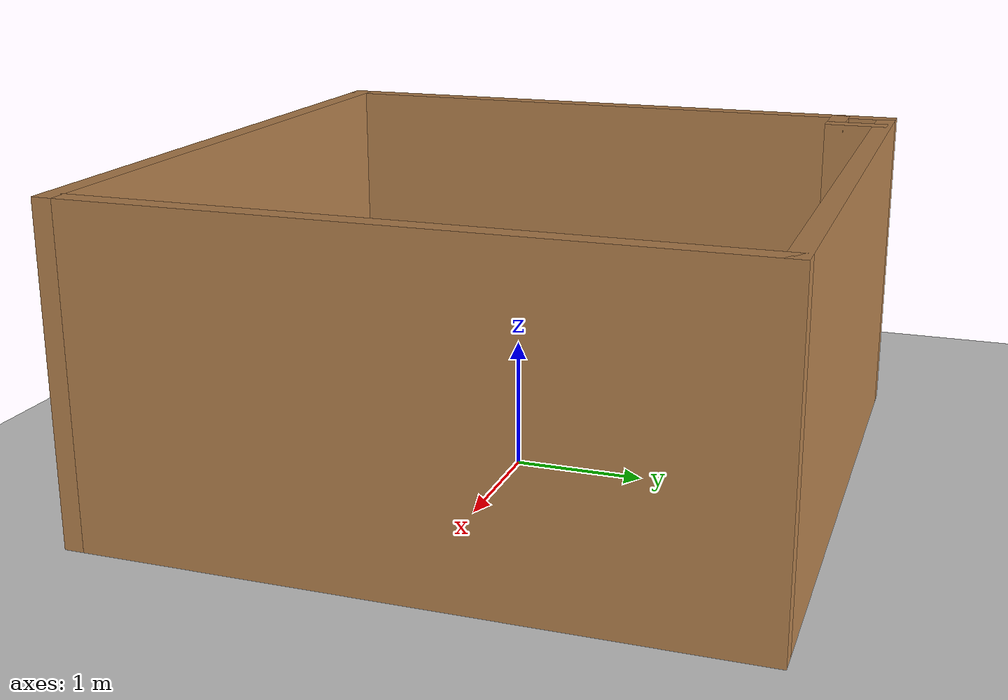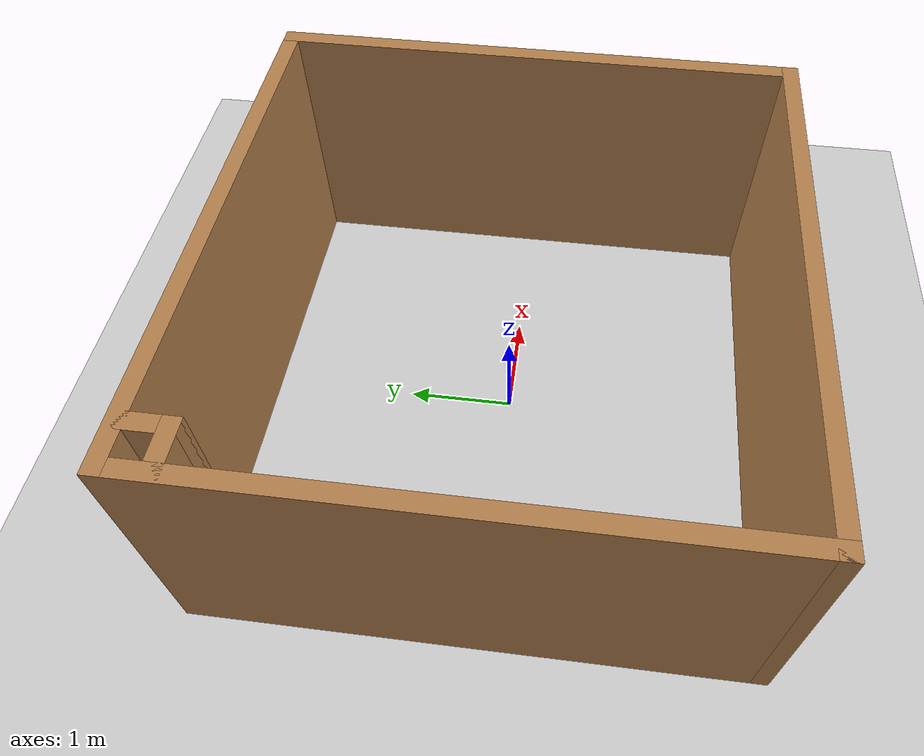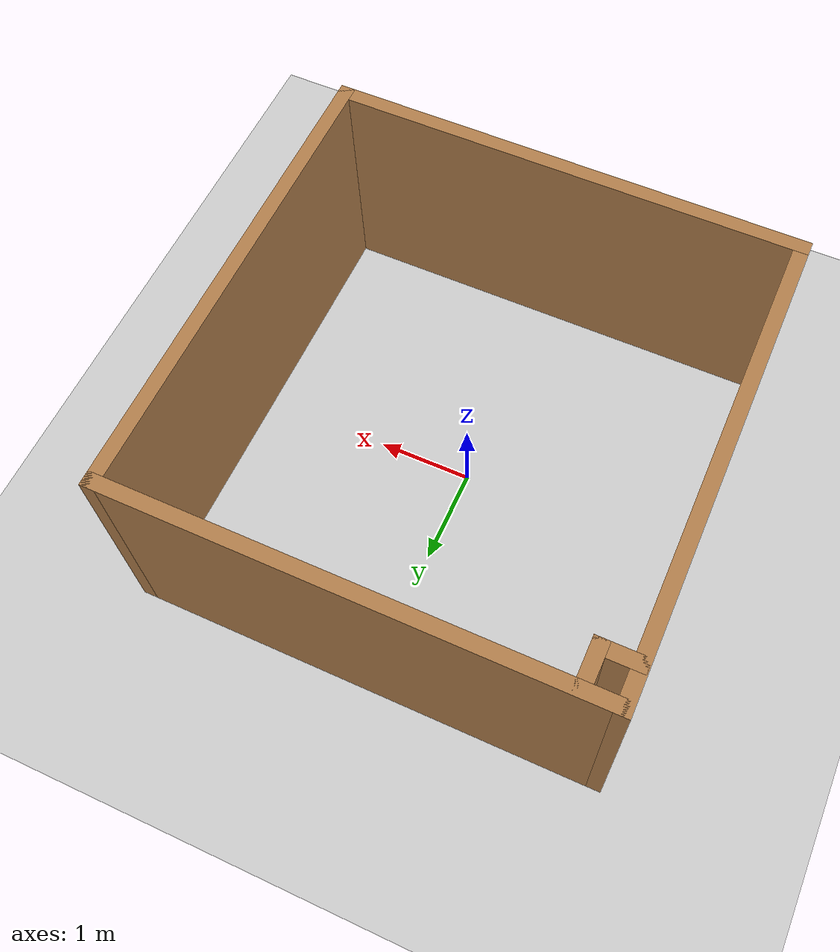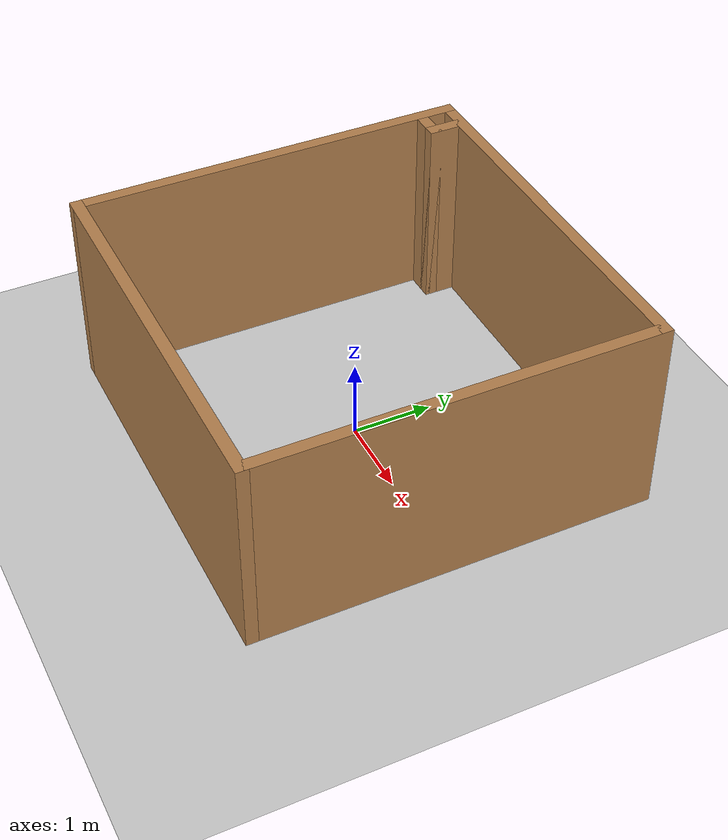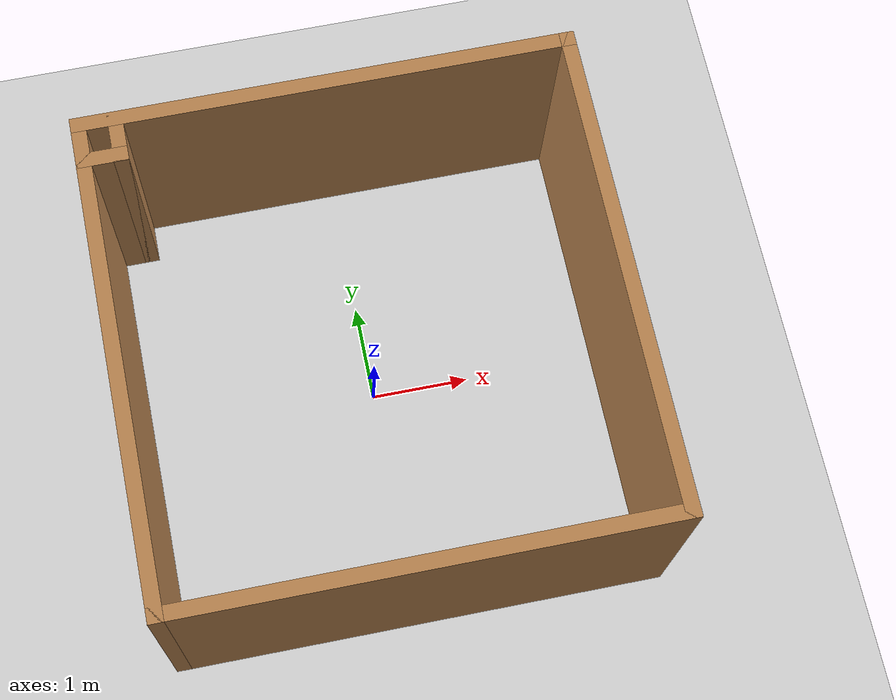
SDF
<sdf version="1.7">
 <world name="default">
  <light name="sun" type="directional">
   <pose>0 0 10 0 -0 0</pose>
   <diffuse>0.8 0.8 0.8 1</diffuse>
   <specular>0.2 0.2 0.2 1</specular>
   <attenuation>
    <range>1000</range>
    <constant>0.9</constant>
    <linear>0.01</linear>
    <quadratic>0.001</quadratic>
   </attenuation>
   <direction>-0.5 0.1 -0.9</direction>
   <spot><inner_angle>0</inner_angle><outer_angle>0</outer_angle><falloff>0</falloff></spot>
  </light>
  <model name="ground_plane">
   <static>1</static>
   <link name="link">
    <collision name="collision">
     <geometry><plane><normal>0 0 1</normal><size>100 100</size></plane></geometry>
     <surface><friction><ode><mu>100</mu><mu2>50</mu2></ode></friction></surface>
    </collision>
    <visual name="visual">
     <cast_shadows>0</cast_shadows>
     <geometry><plane><normal>0 0 1</normal><size>100 100</size></plane></geometry>
     <material>
      <script><uri>file://media/materials/scripts/gazebo.material</uri><name>Gazebo/Grey</name></script>
     </material>
    </visual>
   </link>
  </model>
  <gravity>0 0 -9.8</gravity>
  <magnetic_field>6e-06 2.3e-05 -4.2e-05</magnetic_field>
  <atmosphere type="adiabatic"/>
  <physics type="ode">
   <max_step_size>0.001</max_step_size>
   <real_time_factor>1</real_time_factor>
   <real_time_update_rate>1000</real_time_update_rate>
  </physics>
  <scene><ambient>0.4 0.4 0.4 1</ambient><background>0.7 0.7 0.7 1</background><shadows>1</shadows></scene>
  <audio><device>default</device></audio>
  <spherical_coordinates>
   <surface_model>EARTH_WGS84</surface_model>
   <latitude_deg>0</latitude_deg>
   <longitude_deg>0</longitude_deg>
   <elevation>0</elevation>
   <heading_deg>0</heading_deg>
  </spherical_coordinates>
  <model name="training_env_no_object">
   <pose>0.759671 0.562748 0 0 -0 0</pose>
   <link name="Wall_10">
    <collision name="Wall_10_Collision">
     <geometry><box><size>5 0.15 2.5</size></box></geometry>
     <pose>0 0 1.25 0 -0 0</pose>
    </collision>
    <visual name="Wall_10_Visual">
     <pose>0 0 1.25 0 -0 0</pose>
     <geometry><box><size>5 0.15 2.5</size></box></geometry>
     <material>
      <script><uri>file://media/materials/scripts/gazebo.material</uri><name>Gazebo/Wood</name></script>
      <ambient>1 1 1 1</ambient>
     </material>
     <meta><layer>0</layer></meta>
    </visual>
    <pose>-0.760603 -2.95511 0 0 -0 3.14159</pose>
   </link>
   <link name="Wall_11">
    <collision name="Wall_11_Collision">
     <geometry><box><size>5 0.15 2.5</size></box></geometry>
     <pose>0 0 1.25 0 -0 0</pose>
    </collision>
    <visual name="Wall_11_Visual">
     <pose>0 0 1.25 0 -0 0</pose>
     <geometry><box><size>5 0.15 2.5</size></box></geometry>
     <material>
      <script><uri>file://media/materials/scripts/gazebo.material</uri><name>Gazebo/Wood</name></script>
      <ambient>1 1 1 1</ambient>
     </material>
     <meta><layer>0</layer></meta>
    </visual>
    <pose>-3.1856 -0.530109 0 0 -0 1.5708</pose>
   </link>
   <link name="Wall_20">
    <collision name="Wall_20_Collision">
     <geometry><box><size>0.5 0.15 2.5</size></box></geometry>
     <pose>0 0 1.25 0 -0 0</pose>
    </collision>
    <visual name="Wall_20_Visual">
     <pose>0 0 1.25 0 -0 0</pose>
     <geometry><box><size>0.5 0.15 2.5</size></box></geometry>
     <material>
      <script><uri>file://media/materials/scripts/gazebo.material</uri><name>Gazebo/Wood</name></script>
      <ambient>1 1 1 1</ambient>
     </material>
     <meta><layer>0</layer></meta>
    </visual>
    <pose>-2.99959 1.50946 0 0 -0 0</pose>
   </link>
   <link name="Wall_21">
    <collision name="Wall_21_Collision">
     <geometry><box><size>0.5 0.15 2.5</size></box></geometry>
     <pose>0 0 1.25 0 -0 0</pose>
    </collision>
    <visual name="Wall_21_Visual">
     <pose>0 0 1.25 0 -0 0</pose>
     <geometry><box><size>0.5 0.15 2.5</size></box></geometry>
     <material>
      <script><uri>file://media/materials/scripts/gazebo.material</uri><name>Gazebo/Wood</name></script>
      <ambient>1 1 1 1</ambient>
     </material>
     <meta><layer>0</layer></meta>
    </visual>
    <pose>-2.82459 1.68446 0 0 -0 1.5708</pose>
   </link>
   <link name="Wall_8">
    <collision name="Wall_8_Collision">
     <geometry><box><size>5 0.15 2.5</size></box></geometry>
     <pose>0 0 1.25 0 -0 0</pose>
    </collision>
    <visual name="Wall_8_Visual">
     <pose>0 0 1.25 0 -0 0</pose>
     <geometry><box><size>5 0.15 2.5</size></box></geometry>
     <material>
      <script><uri>file://media/materials/scripts/gazebo.material</uri><name>Gazebo/Wood</name></script>
      <ambient>1 1 1 1</ambient>
     </material>
     <meta><layer>0</layer></meta>
    </visual>
    <pose>-0.760603 1.89489 0 0 -0 0</pose>
   </link>
   <link name="Wall_9">
    <collision name="Wall_9_Collision">
     <geometry><box><size>5 0.15 2.5</size></box></geometry>
     <pose>0 0 1.25 0 -0 0</pose>
    </collision>
    <visual name="Wall_9_Visual">
     <pose>0 0 1.25 0 -0 0</pose>
     <geometry><box><size>5 0.15 2.5</size></box></geometry>
     <material>
      <script><uri>file://media/materials/scripts/gazebo.material</uri><name>Gazebo/Wood</name></script>
      <ambient>1 1 1 1</ambient>
     </material>
     <meta><layer>0</layer></meta>
    </visual>
    <pose>1.6644 -0.530109 0 0 -0 -1.5708</pose>
   </link>
   <static>1</static>
  </model>
 </world>
</sdf>
